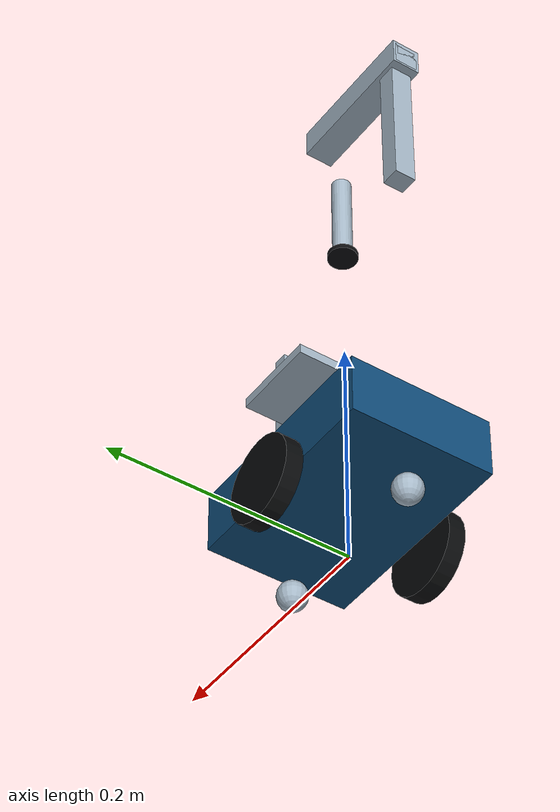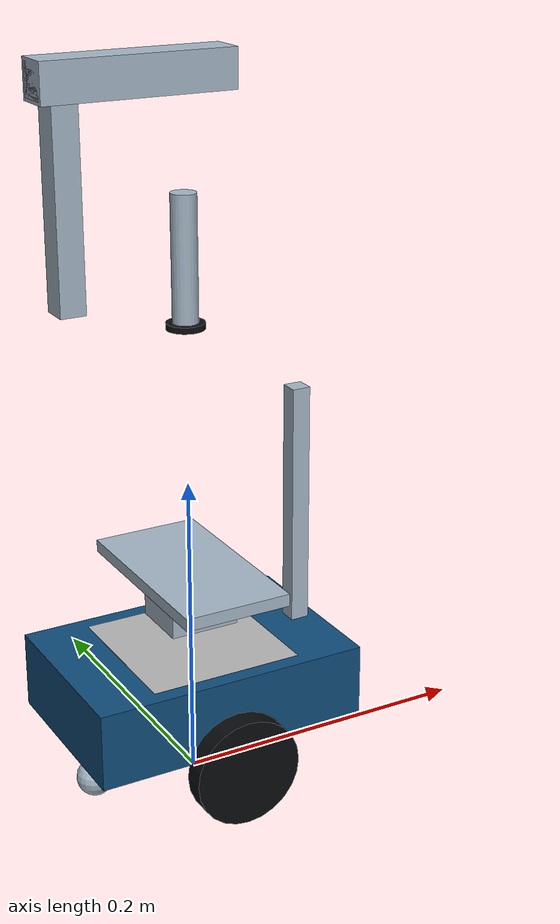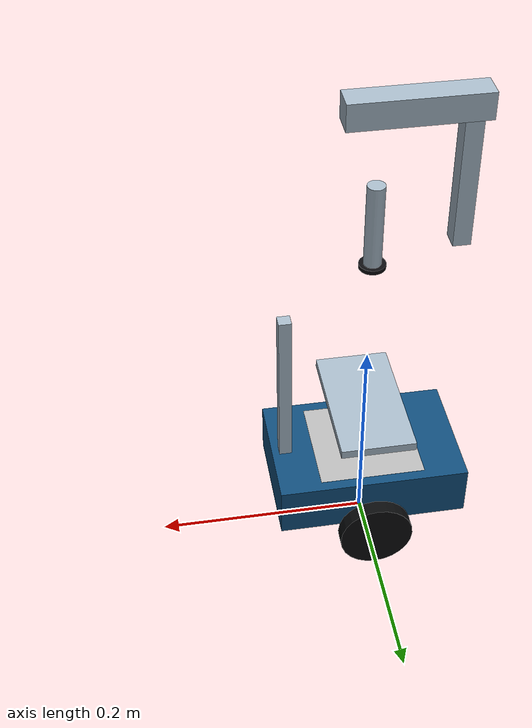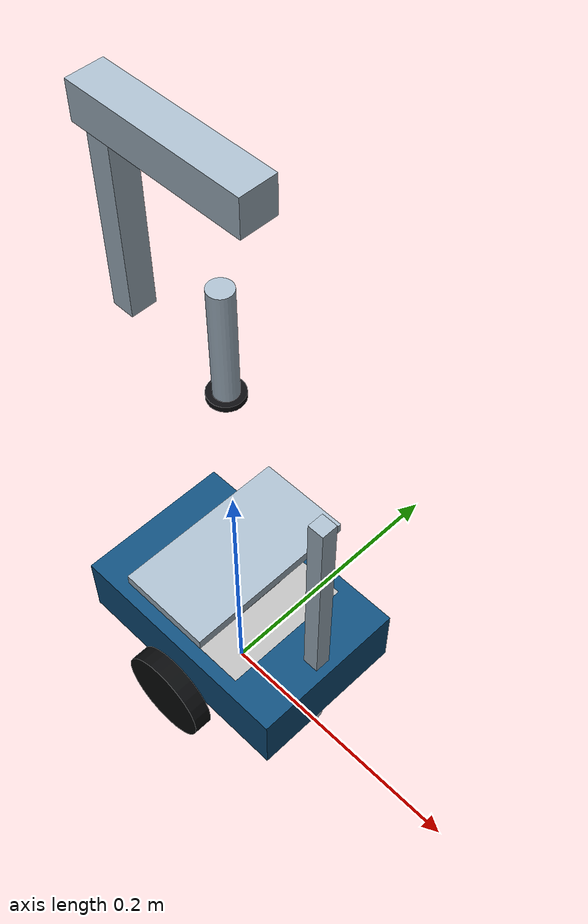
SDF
<?xml version='1.0' encoding='utf-8'?>
<sdf version="1.9">
  <model name="transport_robot">
    <static>false</static>
    <self_collide>true</self_collide>
    <link name="base_link">
      <pose>0 0 0.066 0 0 0</pose>
      <inertial>
        <mass>1.0</mass>
        <inertia>
          <ixx>0.0014083333333333333</ixx>
          <iyy>0.0029083333333333335</iyy>
          <izz>0.0038999999999999994</izz>
          <ixy>0</ixy>
          <ixz>0</ixz>
          <iyz>0</iyz>
        </inertia>
      </inertial>
      <visual name="chassis">
        <pose>0 0 0 0 0 0</pose>
        <geometry>
          <box>
            <size>0.18 0.12 0.05</size>
          </box>
        </geometry>
        <material>
          <ambient>0.06 0.30 0.48 1</ambient>
          <diffuse>0.06 0.30 0.48 1</diffuse>
        </material>
      </visual>
      <collision name="chassis_collision">
        <pose>0 0 0 0 0 0</pose>
        <geometry>
          <box>
            <size>0.18 0.12 0.05</size>
          </box>
        </geometry>
        <surface>
          <friction>
            <ode>
              <mu>0.9</mu>
              <mu2>0.9</mu2>
            </ode>
          </friction>
        </surface>
      </collision>
      <visual name="caster_-0.07">
        <pose>-0.07 0 -0.054 0 0 0</pose>
        <geometry>
          <sphere>
            <radius>0.012</radius>
          </sphere>
        </geometry>
        <material>
          <ambient>0.65 0.72 0.78 1</ambient>
          <diffuse>0.65 0.72 0.78 1</diffuse>
        </material>
      </visual>
      <collision name="caster_-0.07_collision">
        <pose>-0.07 0 -0.054 0 0 0</pose>
        <geometry>
          <sphere>
            <radius>0.012</radius>
          </sphere>
        </geometry>
        <surface>
          <friction>
            <ode>
              <mu>0.001</mu>
              <mu2>0.001</mu2>
            </ode>
          </friction>
        </surface>
      </collision>
      <visual name="caster_0.07">
        <pose>0.07 0 -0.054 0 0 0</pose>
        <geometry>
          <sphere>
            <radius>0.012</radius>
          </sphere>
        </geometry>
        <material>
          <ambient>0.65 0.72 0.78 1</ambient>
          <diffuse>0.65 0.72 0.78 1</diffuse>
        </material>
      </visual>
      <collision name="caster_0.07_collision">
        <pose>0.07 0 -0.054 0 0 0</pose>
        <geometry>
          <sphere>
            <radius>0.012</radius>
          </sphere>
        </geometry>
        <surface>
          <friction>
            <ode>
              <mu>0.001</mu>
              <mu2>0.001</mu2>
            </ode>
          </friction>
        </surface>
      </collision>
      <visual name="logo">
        <pose>0 0 0.0251 0 0 0</pose>
        <geometry>
          <box>
            <size>0.1 0.1 0.0001</size>
          </box>
        </geometry>
        <material>
          <script>
            <uri>file://textures</uri>
            <name>microalchemy_logo.svg</name>
          </script>
        </material>
      </visual>
      <visual name="camera_mast">
        <pose>0.077 0 0.105 0 0 0</pose>
        <geometry>
          <box>
            <size>0.012 0.012 0.16</size>
          </box>
        </geometry>
        <material>
          <ambient>0.65 0.72 0.78 1</ambient>
          <diffuse>0.65 0.72 0.78 1</diffuse>
        </material>
      </visual>
      <sensor name="forward_camera" type="camera">
        <pose>0.095 0 0.184 0 0 0</pose>
        <always_on>true</always_on>
        <update_rate>8</update_rate>
        <topic>/camera/image_raw</topic>
        <camera>
          <horizontal_fov>1.7</horizontal_fov>
          <image>
            <width>960</width>
            <height>720</height>
            <format>R8G8B8</format>
          </image>
          <clip>
            <near>0.01</near>
            <far>3</far>
          </clip>
        </camera>
      </sensor>
      <sensor name="down_camera" type="camera">
        <pose>0.13 0 0.015 0 1.5707963267948966 0</pose>
        <always_on>true</always_on>
        <update_rate>20</update_rate>
        <topic>/down_camera/image_raw</topic>
        <camera>
          <horizontal_fov>1.3</horizontal_fov>
          <image>
            <width>320</width>
            <height>240</height>
            <format>R8G8B8</format>
          </image>
          <clip>
            <near>0.01</near>
            <far>3</far>
          </clip>
        </camera>
      </sensor>
    </link>
    <link name="left_wheel">
      <pose>0 0.07 0.035 0 0 0</pose>
      <inertial>
        <mass>0.08</mass>
        <inertia>
          <ixx>3.3973333333333336e-05</ixx>
          <iyy>6.533333333333334e-05</iyy>
          <izz>3.3973333333333336e-05</izz>
          <ixy>0</ixy>
          <ixz>0</ixz>
          <iyz>0</iyz>
        </inertia>
      </inertial>
      <visual name="tire">
        <pose>0 0 0 1.5707963267948966 0 0</pose>
        <geometry>
          <cylinder>
            <radius>0.035</radius>
            <length>0.014</length>
          </cylinder>
        </geometry>
        <material>
          <ambient>0.035 0.04 0.045 1</ambient>
          <diffuse>0.035 0.04 0.045 1</diffuse>
        </material>
      </visual>
      <collision name="tire_collision">
        <pose>0 0 0 1.5707963267948966 0 0</pose>
        <geometry>
          <cylinder>
            <radius>0.035</radius>
            <length>0.014</length>
          </cylinder>
        </geometry>
        <surface>
          <friction>
            <ode>
              <mu>0.9</mu>
              <mu2>0.9</mu2>
            </ode>
          </friction>
        </surface>
      </collision>
    </link>
    <joint name="left_wheel_joint" type="revolute">
      <parent>base_link</parent>
      <child>left_wheel</child>
      <axis>
        <xyz>0 1 0</xyz>
        <limit>
          <lower>-1e+16</lower>
          <upper>1e+16</upper>
          <effort>100</effort>
          <velocity>20</velocity>
        </limit>
      </axis>
    </joint>
    <link name="right_wheel">
      <pose>0 -0.07 0.035 0 0 0</pose>
      <inertial>
        <mass>0.08</mass>
        <inertia>
          <ixx>3.3973333333333336e-05</ixx>
          <iyy>6.533333333333334e-05</iyy>
          <izz>3.3973333333333336e-05</izz>
          <ixy>0</ixy>
          <ixz>0</ixz>
          <iyz>0</iyz>
        </inertia>
      </inertial>
      <visual name="tire">
        <pose>0 0 0 1.5707963267948966 0 0</pose>
        <geometry>
          <cylinder>
            <radius>0.035</radius>
            <length>0.014</length>
          </cylinder>
        </geometry>
        <material>
          <ambient>0.035 0.04 0.045 1</ambient>
          <diffuse>0.035 0.04 0.045 1</diffuse>
        </material>
      </visual>
      <collision name="tire_collision">
        <pose>0 0 0 1.5707963267948966 0 0</pose>
        <geometry>
          <cylinder>
            <radius>0.035</radius>
            <length>0.014</length>
          </cylinder>
        </geometry>
        <surface>
          <friction>
            <ode>
              <mu>0.9</mu>
              <mu2>0.9</mu2>
            </ode>
          </friction>
        </surface>
      </collision>
    </link>
    <joint name="right_wheel_joint" type="revolute">
      <parent>base_link</parent>
      <child>right_wheel</child>
      <axis>
        <xyz>0 1 0</xyz>
        <limit>
          <lower>-1e+16</lower>
          <upper>1e+16</upper>
          <effort>100</effort>
          <velocity>20</velocity>
        </limit>
      </axis>
    </joint>
    <link name="lift">
      <pose>0 0 0.12 0 0 0</pose>
      <inertial>
        <mass>0.04</mass>
        <inertia>
          <ixx>6.666666666666668e-05</ixx>
          <iyy>6.666666666666668e-05</iyy>
          <izz>6.666666666666668e-05</izz>
          <ixy>0</ixy>
          <ixz>0</ixz>
          <iyz>0</iyz>
        </inertia>
      </inertial>
      <visual name="lift_column">
        <pose>0 0 0 0 0 0</pose>
        <geometry>
          <box>
            <size>0.045 0.04 0.025</size>
          </box>
        </geometry>
        <material>
          <ambient>0.65 0.72 0.78 1</ambient>
          <diffuse>0.65 0.72 0.78 1</diffuse>
        </material>
      </visual>
    </link>
    <link name="tray">
      <pose>0 0 0.14 0 0 0</pose>
      <inertial>
        <mass>0.04</mass>
        <inertia>
          <ixx>6.666666666666668e-05</ixx>
          <iyy>6.666666666666668e-05</iyy>
          <izz>6.666666666666668e-05</izz>
          <ixy>0</ixy>
          <ixz>0</ixz>
          <iyz>0</iyz>
        </inertia>
      </inertial>
      <visual name="transfer_fork">
        <pose>0 0 0 0 0 0</pose>
        <geometry>
          <box>
            <size>0.07 0.13 0.008</size>
          </box>
        </geometry>
        <material>
          <ambient>0.65 0.72 0.78 1</ambient>
          <diffuse>0.65 0.72 0.78 1</diffuse>
        </material>
      </visual>
    </link>
    <joint name="tray_z" type="prismatic">
      <parent>base_link</parent>
      <child>lift</child>
      <axis>
        <xyz>0 0 1</xyz>
        <limit>
          <lower>-0.03</lower>
          <upper>0.01</upper>
          <effort>100</effort>
          <velocity>0.12</velocity>
        </limit>
      </axis>
    </joint>
    <plugin filename="gz-sim-joint-position-controller-system" name="gz::sim::systems::JointPositionController">
      <joint_name>tray_z</joint_name>
      <topic>/actuators/tray_z</topic>
      <use_velocity_commands>true</use_velocity_commands>
      <cmd_max>0.1</cmd_max>
    </plugin>
    <joint name="tray_y" type="prismatic">
      <parent>lift</parent>
      <child>tray</child>
      <axis>
        <xyz>0 1 0</xyz>
        <limit>
          <lower>-0.125</lower>
          <upper>0.005</upper>
          <effort>100</effort>
          <velocity>0.12</velocity>
        </limit>
      </axis>
    </joint>
    <plugin filename="gz-sim-joint-position-controller-system" name="gz::sim::systems::JointPositionController">
      <joint_name>tray_y</joint_name>
      <topic>/actuators/tray_y</topic>
      <use_velocity_commands>true</use_velocity_commands>
      <cmd_max>0.1</cmd_max>
    </plugin>
    <plugin filename="gz-sim-diff-drive-system" name="gz::sim::systems::DiffDrive">
      <left_joint>left_wheel_joint</left_joint>
      <right_joint>right_wheel_joint</right_joint>
      <wheel_separation>0.14</wheel_separation>
      <wheel_radius>0.035</wheel_radius>
      <topic>/cmd_vel</topic>
      <odom_topic>/odom</odom_topic>
      <tf_topic>/robot/tf</tf_topic>
      <frame_id>odom</frame_id>
      <child_frame_id>base_link</child_frame_id>
      <odom_publish_frequency>30</odom_publish_frequency>
      <max_linear_acceleration>0.08</max_linear_acceleration>
      <max_angular_acceleration>0.8</max_angular_acceleration>
    </plugin>
    <plugin filename="gz-sim-joint-state-publisher-system" name="gz::sim::systems::JointStatePublisher">
      <topic>/robot/joint_states</topic>
    </plugin>
    <link name="wand_lift">
      <pose>-0.075 0 0.44 0 0 0</pose>
      <inertial>
        <mass>0.025</mass>
        <inertia>
          <ixx>4.166666666666668e-05</ixx>
          <iyy>4.166666666666668e-05</iyy>
          <izz>4.166666666666668e-05</izz>
          <ixy>0</ixy>
          <ixz>0</ixz>
          <iyz>0</iyz>
        </inertia>
      </inertial>
      <visual name="mast">
        <pose>0 0 -0.05 0 0 0</pose>
        <geometry>
          <box>
            <size>0.016 0.018 0.14</size>
          </box>
        </geometry>
        <material>
          <ambient>0.65 0.72 0.78 1</ambient>
          <diffuse>0.65 0.72 0.78 1</diffuse>
        </material>
      </visual>
      <collision name="mast_collision">
        <pose>0 0 -0.05 0 0 0</pose>
        <geometry>
          <box>
            <size>0.016 0.018 0.14</size>
          </box>
        </geometry>
        <surface>
          <friction>
            <ode>
              <mu>0.9</mu>
              <mu2>0.9</mu2>
            </ode>
          </friction>
        </surface>
      </collision>
      <visual name="fixed_sleeve">
        <pose>0.045 0 0.012 0 0 0</pose>
        <geometry>
          <box>
            <size>0.12 0.024 0.024</size>
          </box>
        </geometry>
        <material>
          <ambient>0.65 0.72 0.78 1</ambient>
          <diffuse>0.65 0.72 0.78 1</diffuse>
        </material>
      </visual>
    </link>
    <link name="reach_link_1">
      <pose>-0.04 0 0.452 0 0 0</pose>
      <inertial>
        <mass>0.01</mass>
        <inertia>
          <ixx>1.666666666666667e-05</ixx>
          <iyy>1.666666666666667e-05</iyy>
          <izz>1.666666666666667e-05</izz>
          <ixy>0</ixy>
          <ixz>0</ixz>
          <iyz>0</iyz>
        </inertia>
      </inertial>
      <visual name="telescoping_tube">
        <pose>0 0 0 0 0 0</pose>
        <geometry>
          <box>
            <size>0.1 0.02 0.02</size>
          </box>
        </geometry>
        <material>
          <ambient>0.65 0.72 0.78 1</ambient>
          <diffuse>0.65 0.72 0.78 1</diffuse>
        </material>
      </visual>
    </link>
    <joint name="reach_1" type="prismatic">
      <parent>wand_lift</parent>
      <child>reach_link_1</child>
      <axis>
        <xyz>1 0 0</xyz>
        <limit>
          <lower>-0.003</lower>
          <upper>0.09</upper>
          <effort>100</effort>
          <velocity>0.12</velocity>
        </limit>
      </axis>
    </joint>
    <plugin filename="gz-sim-joint-position-controller-system" name="gz::sim::systems::JointPositionController">
      <joint_name>reach_1</joint_name>
      <topic>/actuators/reach_1</topic>
      <use_velocity_commands>true</use_velocity_commands>
      <cmd_max>0.1</cmd_max>
    </plugin>
    <link name="reach_link_2">
      <pose>-0.04 0 0.452 0 0 0</pose>
      <inertial>
        <mass>0.01</mass>
        <inertia>
          <ixx>1.666666666666667e-05</ixx>
          <iyy>1.666666666666667e-05</iyy>
          <izz>1.666666666666667e-05</izz>
          <ixy>0</ixy>
          <ixz>0</ixz>
          <iyz>0</iyz>
        </inertia>
      </inertial>
      <visual name="telescoping_tube">
        <pose>0 0 0 0 0 0</pose>
        <geometry>
          <box>
            <size>0.1 0.016 0.016</size>
          </box>
        </geometry>
        <material>
          <ambient>0.65 0.72 0.78 1</ambient>
          <diffuse>0.65 0.72 0.78 1</diffuse>
        </material>
      </visual>
    </link>
    <joint name="reach_2" type="prismatic">
      <parent>reach_link_1</parent>
      <child>reach_link_2</child>
      <axis>
        <xyz>1 0 0</xyz>
        <limit>
          <lower>-0.003</lower>
          <upper>0.09</upper>
          <effort>100</effort>
          <velocity>0.12</velocity>
        </limit>
      </axis>
    </joint>
    <plugin filename="gz-sim-joint-position-controller-system" name="gz::sim::systems::JointPositionController">
      <joint_name>reach_2</joint_name>
      <topic>/actuators/reach_2</topic>
      <use_velocity_commands>true</use_velocity_commands>
      <cmd_max>0.1</cmd_max>
    </plugin>
    <link name="wand">
      <pose>0 0 0.342 0 0 0</pose>
      <inertial>
        <mass>0.025</mass>
        <inertia>
          <ixx>4.166666666666668e-05</ixx>
          <iyy>4.166666666666668e-05</iyy>
          <izz>4.166666666666668e-05</izz>
          <ixy>0</ixy>
          <ixz>0</ixz>
          <iyz>0</iyz>
        </inertia>
      </inertial>
      <visual name="vacuum_wand">
        <pose>0 0 0 0 0 0</pose>
        <geometry>
          <cylinder>
            <radius>0.008</radius>
            <length>0.08</length>
          </cylinder>
        </geometry>
        <material>
          <ambient>0.65 0.72 0.78 1</ambient>
          <diffuse>0.65 0.72 0.78 1</diffuse>
        </material>
      </visual>
      <collision name="vacuum_wand_collision">
        <pose>0 0 0 0 0 0</pose>
        <geometry>
          <cylinder>
            <radius>0.008</radius>
            <length>0.08</length>
          </cylinder>
        </geometry>
        <surface>
          <friction>
            <ode>
              <mu>0.9</mu>
              <mu2>0.9</mu2>
            </ode>
          </friction>
        </surface>
      </collision>
      <visual name="vacuum_cup">
        <pose>0 0 -0.04 0 0 0</pose>
        <geometry>
          <cylinder>
            <radius>0.012</radius>
            <length>0.004</length>
          </cylinder>
        </geometry>
        <material>
          <ambient>0.05 0.05 0.06 1</ambient>
          <diffuse>0.05 0.05 0.06 1</diffuse>
        </material>
      </visual>
      <collision name="vacuum_cup_collision">
        <pose>0 0 -0.04 0 0 0</pose>
        <geometry>
          <cylinder>
            <radius>0.012</radius>
            <length>0.004</length>
          </cylinder>
        </geometry>
        <surface>
          <friction>
            <ode>
              <mu>0.9</mu>
              <mu2>0.9</mu2>
            </ode>
          </friction>
        </surface>
      </collision>
      <visual name="reach_rail">
        <pose>-0.04 0 0.11 0 0 0</pose>
        <geometry>
          <box>
            <size>0.1 0.012 0.012</size>
          </box>
        </geometry>
        <material>
          <ambient>0.65 0.72 0.78 1</ambient>
          <diffuse>0.65 0.72 0.78 1</diffuse>
        </material>
      </visual>
    </link>
    <joint name="wand_z" type="prismatic">
      <parent>base_link</parent>
      <child>wand_lift</child>
      <axis>
        <xyz>0 0 1</xyz>
        <limit>
          <lower>-0.145</lower>
          <upper>0.01</upper>
          <effort>100</effort>
          <velocity>0.12</velocity>
        </limit>
      </axis>
    </joint>
    <plugin filename="gz-sim-joint-position-controller-system" name="gz::sim::systems::JointPositionController">
      <joint_name>wand_z</joint_name>
      <topic>/actuators/wand_z</topic>
      <use_velocity_commands>true</use_velocity_commands>
      <cmd_max>0.1</cmd_max>
    </plugin>
    <joint name="wand_x" type="prismatic">
      <parent>reach_link_2</parent>
      <child>wand</child>
      <axis>
        <xyz>1 0 0</xyz>
        <limit>
          <lower>-0.003</lower>
          <upper>0.09</upper>
          <effort>100</effort>
          <velocity>0.12</velocity>
        </limit>
      </axis>
    </joint>
    <plugin filename="gz-sim-joint-position-controller-system" name="gz::sim::systems::JointPositionController">
      <joint_name>wand_x</joint_name>
      <topic>/actuators/wand_x</topic>
      <use_velocity_commands>true</use_velocity_commands>
      <cmd_max>0.1</cmd_max>
    </plugin>
    <plugin filename="gz-sim-detachable-joint-system" name="gz::sim::systems::DetachableJoint">
      <parent_link>wand</parent_link>
      <child_model>wafer</child_model>
      <child_link>body</child_link>
      <attach_topic>/attachments/vacuum/attach</attach_topic>
      <detach_topic>/attachments/vacuum/detach</detach_topic>
      <output_topic>/attachments/vacuum/state</output_topic>
    </plugin>
    <plugin filename="gz-sim-pose-publisher-system" name="gz::sim::systems::PosePublisher">
      <publish_link_pose>false</publish_link_pose>
      <publish_model_pose>true</publish_model_pose>
      <publish_nested_model_pose>false</publish_nested_model_pose>
      <use_pose_vector_msg>false</use_pose_vector_msg>
      <update_frequency>30</update_frequency>
      <topic>/poses/transport_robot</topic>
    </plugin>
    <plugin filename="gz-sim-detachable-joint-system" name="gz::sim::systems::DetachableJoint">
      <parent_link>tray</parent_link>
      <child_model>carrier</child_model>
      <child_link>body</child_link>
      <attach_topic>/attachments/carrier/attach</attach_topic>
      <detach_topic>/attachments/carrier/detach</detach_topic>
      <output_topic>/attachments/carrier/state</output_topic>
    </plugin>
  </model>
</sdf>
